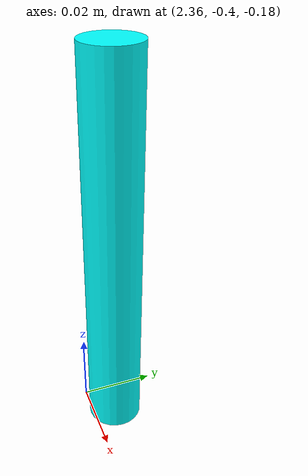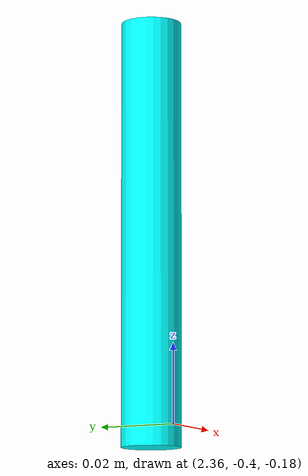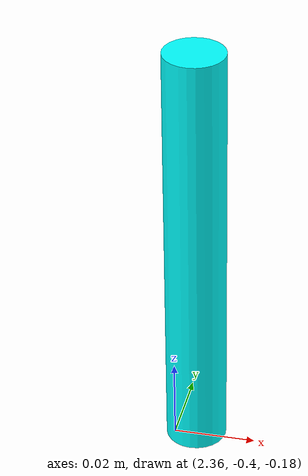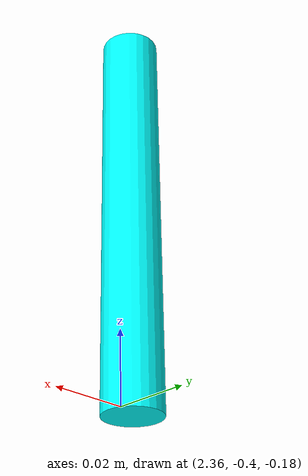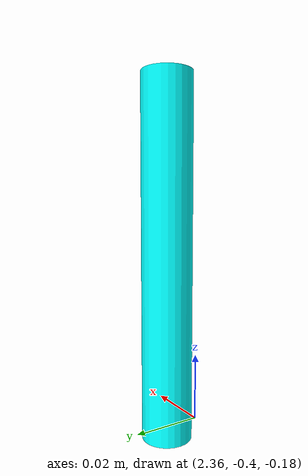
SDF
<?xml version='1.0'?>
<sdf version='1.7'>
  <model name='unit_sphere'>
    <link name='link_1'>
      <inertial>
        <mass>2.451e-05</mass>
        <inertia>
          <ixx>2e-08</ixx>
          <ixy>0</ixy>
          <ixz>0</ixz>
          <iyy>2e-08</iyy>
          <iyz>0</iyz>
          <izz>0</izz>
        </inertia>
        <pose>0 0 0 0 -0 0</pose>
      </inertial>
      <pose>2.36365 -0.392125 -0.131341 0 -0 0</pose>
      <gravity>0</gravity>
      <self_collide>0</self_collide>
      <kinematic>0</kinematic>
      <enable_wind>0</enable_wind>
      <visual name='visual'>
        <pose>0 0 0 0 -0 0</pose>
        <geometry>
          <cylinder>
            <radius>0.00755197</radius>
            <length>0.107699</length>
          </cylinder>
        </geometry>
        <material>
          <lighting>1</lighting>
          <script>
            <uri>file://media/materials/scripts/gazebo.material</uri>
            <name>Gazebo/Grey</name>
          </script>
          <shader type='pixel'>
            <normal_map>__default__</normal_map>
          </shader>
          <diffuse>0 1 1 1</diffuse>
          <ambient>0.3 0.3 0.3 1</ambient>
          <specular>0.01 0.01 0.01 1</specular>
          <emissive>0 0 0 1</emissive>
        </material>
        <transparency>0</transparency>
        <cast_shadows>1</cast_shadows>
      </visual>
    </link>
    <static>0</static>
    <allow_auto_disable>0</allow_auto_disable>
  </model>
</sdf>
